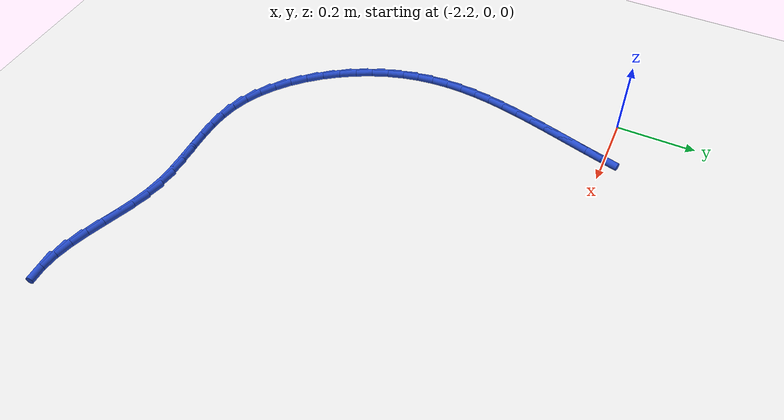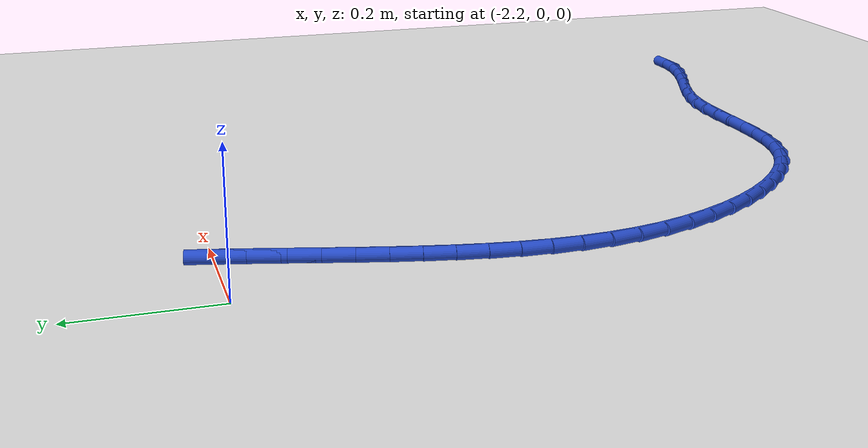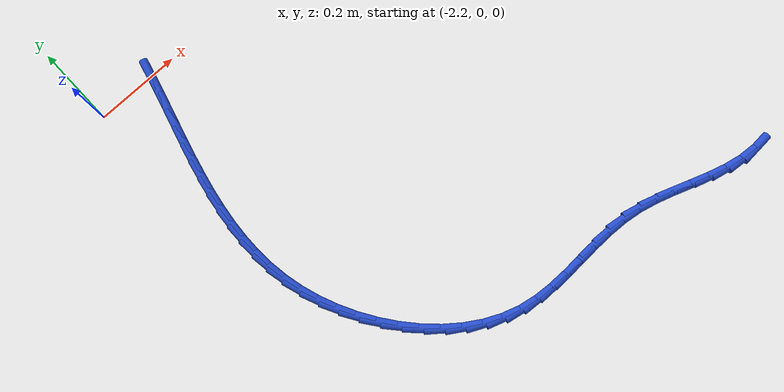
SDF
<sdf version="1.6">
 <world name="default">
  <model name="ground_plane">
   <static>1</static>
   <link name="link">
    <collision name="collision">
     <geometry><plane><normal>0 0 1</normal><size>100 100</size></plane></geometry>
     <surface><friction><ode><mu>100</mu><mu2>50</mu2></ode></friction></surface>
    </collision>
    <visual name="visual">
     <cast_shadows>0</cast_shadows>
     <geometry><plane><normal>0 0 1</normal><size>100 100</size></plane></geometry>
     <material>
      <script><uri>file://media/materials/scripts/gazebo.material</uri><name>Gazebo/WhiteGlow</name></script>
     </material>
    </visual>
   </link>
  </model>
  <model name="line">
   <link name="link_79">
    <pose>-2.061178307691376 -0.0012658670677298976 0.01 0 1.57 1.3079219242878306</pose>
    <collision name="collision">
     <geometry><cylinder><radius>0.01</radius><length>0.08</length></cylinder></geometry>
    </collision>
    <visual name="visual">
     <material>
      <script><name>Gazebo/Blue</name><uri>file://media/materials/scripts/gazebo.material</uri></script>
     </material>
     <geometry><cylinder><radius>0.01</radius><length>0.08</length></cylinder></geometry>
    </visual>
   </link>
   <link name="link_80">
    <pose>-2.0726289810523526 -0.0438173352241285 0.01 0 1.57 1.2950943270776047</pose>
    <collision name="collision">
     <geometry><cylinder><radius>0.01</radius><length>0.08</length></cylinder></geometry>
    </collision>
    <visual name="visual">
     <material>
      <script><name>Gazebo/Blue</name><uri>file://media/materials/scripts/gazebo.material</uri></script>
     </material>
     <geometry><cylinder><radius>0.01</radius><length>0.08</length></cylinder></geometry>
    </visual>
   </link>
   <link name="link_81">
    <pose>-2.084618586965292 -0.08619741327912472 0.01 0 1.57 1.2901176989705136</pose>
    <collision name="collision">
     <geometry><cylinder><radius>0.01</radius><length>0.08</length></cylinder></geometry>
    </collision>
    <visual name="visual">
     <material>
      <script><name>Gazebo/Blue</name><uri>file://media/materials/scripts/gazebo.material</uri></script>
     </material>
     <geometry><cylinder><radius>0.01</radius><length>0.08</length></cylinder></geometry>
    </visual>
   </link>
   <link name="link_82">
    <pose>-2.0967936234695177 -0.12842943596567627 0.01 0 1.57 1.2930169511335645</pose>
    <collision name="collision">
     <geometry><cylinder><radius>0.01</radius><length>0.08</length></cylinder></geometry>
    </collision>
    <visual name="visual">
     <material>
      <script><name>Gazebo/Blue</name><uri>file://media/materials/scripts/gazebo.material</uri></script>
     </material>
     <geometry><cylinder><radius>0.01</radius><length>0.08</length></cylinder></geometry>
    </visual>
   </link>
   <link name="link_83">
    <pose>-2.108800588604355 -0.1705367380167386 0.01 0 1.57 1.3038966490480937</pose>
    <collision name="collision">
     <geometry><cylinder><radius>0.01</radius><length>0.08</length></cylinder></geometry>
    </collision>
    <visual name="visual">
     <material>
      <script><name>Gazebo/Blue</name><uri>file://media/materials/scripts/gazebo.material</uri></script>
     </material>
     <geometry><cylinder><radius>0.01</radius><length>0.08</length></cylinder></geometry>
    </visual>
   </link>
   <link name="link_84">
    <pose>-2.1202859804091263 -0.21254265416526932 0.01 0 1.57 1.3229386004996582</pose>
    <collision name="collision">
     <geometry><cylinder><radius>0.01</radius><length>0.08</length></cylinder></geometry>
    </collision>
    <visual name="visual">
     <material>
      <script><name>Gazebo/Blue</name><uri>file://media/materials/scripts/gazebo.material</uri></script>
     </material>
     <geometry><cylinder><radius>0.01</radius><length>0.08</length></cylinder></geometry>
    </visual>
   </link>
   <link name="link_85">
    <pose>-2.130896296923157 -0.25447051914422536 0.01 0 1.57 1.3503849199282958</pose>
    <collision name="collision">
     <geometry><cylinder><radius>0.01</radius><length>0.08</length></cylinder></geometry>
    </collision>
    <visual name="visual">
     <material>
      <script><name>Gazebo/Blue</name><uri>file://media/materials/scripts/gazebo.material</uri></script>
     </material>
     <geometry><cylinder><radius>0.01</radius><length>0.08</length></cylinder></geometry>
    </visual>
   </link>
   <link name="link_86">
    <pose>-2.140278036185772 -0.2963436676865637 0.01 0 1.57 1.38650303689056</pose>
    <collision name="collision">
     <geometry><cylinder><radius>0.01</radius><length>0.08</length></cylinder></geometry>
    </collision>
    <visual name="visual">
     <material>
      <script><name>Gazebo/Blue</name><uri>file://media/materials/scripts/gazebo.material</uri></script>
     </material>
     <geometry><cylinder><radius>0.01</radius><length>0.08</length></cylinder></geometry>
    </visual>
   </link>
   <link name="link_87">
    <pose>-2.148077696236295 -0.3381854345252421 0.01 0 1.57 1.431527881515273</pose>
    <collision name="collision">
     <geometry><cylinder><radius>0.01</radius><length>0.08</length></cylinder></geometry>
    </collision>
    <visual name="visual">
     <material>
      <script><name>Gazebo/Blue</name><uri>file://media/materials/scripts/gazebo.material</uri></script>
     </material>
     <geometry><cylinder><radius>0.01</radius><length>0.08</length></cylinder></geometry>
    </visual>
   </link>
   <link name="link_88">
    <pose>-2.15394177511405 -0.3800191543932159 0.01 0 1.57 1.4855771659011485</pose>
    <collision name="collision">
     <geometry><cylinder><radius>0.01</radius><length>0.08</length></cylinder></geometry>
    </collision>
    <visual name="visual">
     <material>
      <script><name>Gazebo/Blue</name><uri>file://media/materials/scripts/gazebo.material</uri></script>
     </material>
     <geometry><cylinder><radius>0.01</radius><length>0.08</length></cylinder></geometry>
    </visual>
   </link>
   <link name="link_89">
    <pose>-2.1575167708583614 -0.4218681620234427 0.01 0 1.57 1.5485401931752572</pose>
    <collision name="collision">
     <geometry><cylinder><radius>0.01</radius><length>0.08</length></cylinder></geometry>
    </collision>
    <visual name="visual">
     <material>
      <script><name>Gazebo/Blue</name><uri>file://media/materials/scripts/gazebo.material</uri></script>
     </material>
     <geometry><cylinder><radius>0.01</radius><length>0.08</length></cylinder></geometry>
    </visual>
   </link>
   <link name="link_90">
    <pose>-2.158449181508554 -0.46375579214887974 0.01 0 1.57 -1.5216417533860516</pose>
    <collision name="collision">
     <geometry><cylinder><radius>0.01</radius><length>0.08</length></cylinder></geometry>
    </collision>
    <visual name="visual">
     <material>
      <script><name>Gazebo/Blue</name><uri>file://media/materials/scripts/gazebo.material</uri></script>
     </material>
     <geometry><cylinder><radius>0.01</radius><length>0.08</length></cylinder></geometry>
    </visual>
   </link>
   <link name="link_91">
    <pose>-2.1563855051039513 -0.5057053795024835 0.01 0 1.57 -1.4427209142557833</pose>
    <collision name="collision">
     <geometry><cylinder><radius>0.01</radius><length>0.08</length></cylinder></geometry>
    </collision>
    <visual name="visual">
     <material>
      <script><name>Gazebo/Blue</name><uri>file://media/materials/scripts/gazebo.material</uri></script>
     </material>
     <geometry><cylinder><radius>0.01</radius><length>0.08</length></cylinder></geometry>
    </visual>
   </link>
   <link name="link_92">
    <pose>-2.1509722396838784 -0.547740258817212 0.01 0 1.57 -1.3577617055067246</pose>
    <collision name="collision">
     <geometry><cylinder><radius>0.01</radius><length>0.08</length></cylinder></geometry>
    </collision>
    <visual name="visual">
     <material>
      <script><name>Gazebo/Blue</name><uri>file://media/materials/scripts/gazebo.material</uri></script>
     </material>
     <geometry><cylinder><radius>0.01</radius><length>0.08</length></cylinder></geometry>
    </visual>
   </link>
   <link name="link_93">
    <pose>-2.1418558832876595 -0.5898837648260209 0.01 0 1.57 -1.2702923874854628</pose>
    <collision name="collision">
     <geometry><cylinder><radius>0.01</radius><length>0.08</length></cylinder></geometry>
    </collision>
    <visual name="visual">
     <material>
      <script><name>Gazebo/Blue</name><uri>file://media/materials/scripts/gazebo.material</uri></script>
     </material>
     <geometry><cylinder><radius>0.01</radius><length>0.08</length></cylinder></geometry>
    </visual>
   </link>
   <link name="link_94">
    <pose>-2.1287838370528123 -0.632066828683473 0.01 0 1.57 -1.186944312933135</pose>
    <collision name="collision">
     <geometry><cylinder><radius>0.01</radius><length>0.08</length></cylinder></geometry>
    </collision>
    <visual name="visual">
     <material>
      <script><name>Gazebo/Blue</name><uri>file://media/materials/scripts/gazebo.material</uri></script>
     </material>
     <geometry><cylinder><radius>0.01</radius><length>0.08</length></cylinder></geometry>
    </visual>
   </link>
   <link name="link_95">
    <pose>-2.1119083337929845 -0.6738496506528981 0.01 0 1.57 -1.107142744837634</pose>
    <collision name="collision">
     <geometry><cylinder><radius>0.01</radius><length>0.08</length></cylinder></geometry>
    </collision>
    <visual name="visual">
     <material>
      <script><name>Gazebo/Blue</name><uri>file://media/materials/scripts/gazebo.material</uri></script>
     </material>
     <geometry><cylinder><radius>0.01</radius><length>0.08</length></cylinder></geometry>
    </visual>
   </link>
   <link name="link_96">
    <pose>-2.0914831199819712 -0.714699468287648 0.01 0 1.57 -1.028684309226763</pose>
    <collision name="collision">
     <geometry><cylinder><radius>0.01</radius><length>0.08</length></cylinder></geometry>
    </collision>
    <visual name="visual">
     <material>
      <script><name>Gazebo/Blue</name><uri>file://media/materials/scripts/gazebo.material</uri></script>
     </material>
     <geometry><cylinder><radius>0.01</radius><length>0.08</length></cylinder></geometry>
    </visual>
   </link>
   <link name="link_97">
    <pose>-2.067761942093668 -0.7540835191409777 0.01 0 1.57 -0.9494946443067683</pose>
    <collision name="collision">
     <geometry><cylinder><radius>0.01</radius><length>0.08</length></cylinder></geometry>
    </collision>
    <visual name="visual">
     <material>
      <script><name>Gazebo/Blue</name><uri>file://media/materials/scripts/gazebo.material</uri></script>
     </material>
     <geometry><cylinder><radius>0.01</radius><length>0.08</length></cylinder></geometry>
    </visual>
   </link>
   <link name="link_98">
    <pose>-2.040998546601972 -0.791469040766145 0.01 0 1.57 -0.8675399596296628</pose>
    <collision name="collision">
     <geometry><cylinder><radius>0.01</radius><length>0.08</length></cylinder></geometry>
    </collision>
    <visual name="visual">
     <material>
      <script><name>Gazebo/Blue</name><uri>file://media/materials/scripts/gazebo.material</uri></script>
     </material>
     <geometry><cylinder><radius>0.01</radius><length>0.08</length></cylinder></geometry>
    </visual>
   </link>
   <link name="link_99">
    <pose>-2.0114466799807795 -0.8263232707164064 0.01 0 1.57 -0.7807577701212459</pose>
    <collision name="collision">
     <geometry><cylinder><radius>0.01</radius><length>0.08</length></cylinder></geometry>
    </collision>
    <visual name="visual">
     <material>
      <script><name>Gazebo/Blue</name><uri>file://media/materials/scripts/gazebo.material</uri></script>
     </material>
     <geometry><cylinder><radius>0.01</radius><length>0.08</length></cylinder></geometry>
    </visual>
   </link>
   <link name="link_100">
    <pose>-1.9793600887039866 -0.8581134465450189 0.01 0 1.57 -0.6870255660911043</pose>
    <collision name="collision">
     <geometry><cylinder><radius>0.01</radius><length>0.08</length></cylinder></geometry>
    </collision>
    <visual name="visual">
     <material>
      <script><name>Gazebo/Blue</name><uri>file://media/materials/scripts/gazebo.material</uri></script>
     </material>
     <geometry><cylinder><radius>0.01</radius><length>0.08</length></cylinder></geometry>
    </visual>
   </link>
   <link name="link_101">
    <pose>-1.9449925192454893 -0.886306805805239 0.01 0 1.57 -0.5841995951940643</pose>
    <collision name="collision">
     <geometry><cylinder><radius>0.01</radius><length>0.08</length></cylinder></geometry>
    </collision>
    <visual name="visual">
     <material>
      <script><name>Gazebo/Blue</name><uri>file://media/materials/scripts/gazebo.material</uri></script>
     </material>
     <geometry><cylinder><radius>0.01</radius><length>0.08</length></cylinder></geometry>
    </visual>
   </link>
   <link name="link_102">
    <pose>-1.9085977180791864 -0.9103705860503233 0.01 0 1.57 -0.47027592582265887</pose>
    <collision name="collision">
     <geometry><cylinder><radius>0.01</radius><length>0.08</length></cylinder></geometry>
    </collision>
    <visual name="visual">
     <material>
      <script><name>Gazebo/Blue</name><uri>file://media/materials/scripts/gazebo.material</uri></script>
     </material>
     <geometry><cylinder><radius>0.01</radius><length>0.08</length></cylinder></geometry>
    </visual>
   </link>
   <link name="link_103">
    <pose>-1.8704294316789731 -0.9297720248335286 0.01 0 1.57 -0.34373973444647177</pose>
    <collision name="collision">
     <geometry><cylinder><radius>0.01</radius><length>0.08</length></cylinder></geometry>
    </collision>
    <visual name="visual">
     <material>
      <script><name>Gazebo/Blue</name><uri>file://media/materials/scripts/gazebo.material</uri></script>
     </material>
     <geometry><cylinder><radius>0.01</radius><length>0.08</length></cylinder></geometry>
    </visual>
   </link>
   <link name="link_104">
    <pose>-1.8307414065187453 -0.9439783597081117 0.01 0 1.57 -0.20956809041789357</pose>
    <collision name="collision">
     <geometry><cylinder><radius>0.01</radius><length>0.08</length></cylinder></geometry>
    </collision>
    <visual name="visual">
     <material>
      <script><name>Gazebo/Blue</name><uri>file://media/materials/scripts/gazebo.material</uri></script>
     </material>
     <geometry><cylinder><radius>0.01</radius><length>0.08</length></cylinder></geometry>
    </visual>
   </link>
   <link name="link_105">
    <pose>-1.7897881576267793 -0.9526887453176129 0.01 0 1.57 -0.09969883323726439</pose>
    <collision name="collision">
     <geometry><cylinder><radius>0.01</radius><length>0.08</length></cylinder></geometry>
    </collision>
    <visual name="visual">
     <material>
      <script><name>Gazebo/Blue</name><uri>file://media/materials/scripts/gazebo.material</uri></script>
     </material>
     <geometry><cylinder><radius>0.01</radius><length>0.08</length></cylinder></geometry>
    </visual>
   </link>
   <link name="link_106">
    <pose>-1.74782845397098 -0.9568859947259677 0.01 0 1.57 -0.025952413896197856</pose>
    <collision name="collision">
     <geometry><cylinder><radius>0.01</radius><length>0.08</length></cylinder></geometry>
    </collision>
    <visual name="visual">
     <material>
      <script><name>Gazebo/Blue</name><uri>file://media/materials/scripts/gazebo.material</uri></script>
     </material>
     <geometry><cylinder><radius>0.01</radius><length>0.08</length></cylinder></geometry>
    </visual>
   </link>
   <link name="link_107">
    <pose>-1.705122528093175 -0.9579945654857485 0.01 0 1.57 0.012854579201114906</pose>
    <collision name="collision">
     <geometry><cylinder><radius>0.01</radius><length>0.08</length></cylinder></geometry>
    </collision>
    <visual name="visual">
     <material>
      <script><name>Gazebo/Blue</name><uri>file://media/materials/scripts/gazebo.material</uri></script>
     </material>
     <geometry><cylinder><radius>0.01</radius><length>0.08</length></cylinder></geometry>
    </visual>
   </link>
   <link name="link_108">
    <pose>-1.6619306138802166 -0.95743932102041 0.01 0 1.57 0.018289966517682395</pose>
    <collision name="collision">
     <geometry><cylinder><radius>0.01</radius><length>0.08</length></cylinder></geometry>
    </collision>
    <visual name="visual">
     <material>
      <script><name>Gazebo/Blue</name><uri>file://media/materials/scripts/gazebo.material</uri></script>
     </material>
     <geometry><cylinder><radius>0.01</radius><length>0.08</length></cylinder></geometry>
    </visual>
   </link>
   <link name="link_109">
    <pose>-1.6185129452189548 -0.956645124753405 0.01 0 1.57 -0.009028951473472997</pose>
    <collision name="collision">
     <geometry><cylinder><radius>0.01</radius><length>0.08</length></cylinder></geometry>
    </collision>
    <visual name="visual">
     <material>
      <script><name>Gazebo/Blue</name><uri>file://media/materials/scripts/gazebo.material</uri></script>
     </material>
     <geometry><cylinder><radius>0.01</radius><length>0.08</length></cylinder></geometry>
    </visual>
   </link>
   <link name="link_110">
    <pose>-1.5751297559962423 -0.9570368401081877 0.01 0 1.57 -0.06956952728130682</pose>
    <collision name="collision">
     <geometry><cylinder><radius>0.01</radius><length>0.08</length></cylinder></geometry>
    </collision>
    <visual name="visual">
     <material>
      <script><name>Gazebo/Blue</name><uri>file://media/materials/scripts/gazebo.material</uri></script>
     </material>
     <geometry><cylinder><radius>0.01</radius><length>0.08</length></cylinder></geometry>
    </visual>
   </link>
   <link name="link_111">
    <pose>-1.532041280098929 -0.9600393305082118 0.01 0 1.57 -0.1637836511515226</pose>
    <collision name="collision">
     <geometry><cylinder><radius>0.01</radius><length>0.08</length></cylinder></geometry>
    </collision>
    <visual name="visual">
     <material>
      <script><name>Gazebo/Blue</name><uri>file://media/materials/scripts/gazebo.material</uri></script>
     </material>
     <geometry><cylinder><radius>0.01</radius><length>0.08</length></cylinder></geometry>
    </visual>
   </link>
   <link name="link_112">
    <pose>-1.48950663722782 -0.9670687774817752 0.01 0 1.57 -0.26778719580997806</pose>
    <collision name="collision">
     <geometry><cylinder><radius>0.01</radius><length>0.08</length></cylinder></geometry>
    </collision>
    <visual name="visual">
     <material>
      <script><name>Gazebo/Blue</name><uri>file://media/materials/scripts/gazebo.material</uri></script>
     </material>
     <geometry><cylinder><radius>0.01</radius><length>0.08</length></cylinder></geometry>
    </visual>
   </link>
   <link name="link_113">
    <pose>-1.4476578661709834 -0.978551130124038 0.01 0 1.57 -0.3371897281789532</pose>
    <collision name="collision">
     <geometry><cylinder><radius>0.01</radius><length>0.08</length></cylinder></geometry>
    </collision>
    <visual name="visual">
     <material>
      <script><name>Gazebo/Blue</name><uri>file://media/materials/scripts/gazebo.material</uri></script>
     </material>
     <geometry><cylinder><radius>0.01</radius><length>0.08</length></cylinder></geometry>
    </visual>
   </link>
   <link name="link_114">
    <pose>-1.4063842506072555 -0.99302075540904 0.01 0 1.57 -0.3687073557311885</pose>
    <collision name="collision">
     <geometry><cylinder><radius>0.01</radius><length>0.08</length></cylinder></geometry>
    </collision>
    <visual name="visual">
     <material>
      <script><name>Gazebo/Blue</name><uri>file://media/materials/scripts/gazebo.material</uri></script>
     </material>
     <geometry><cylinder><radius>0.01</radius><length>0.08</length></cylinder></geometry>
    </visual>
   </link>
   <link name="link_115">
    <pose>-1.3655477409080337 -1.0087990353160556 0.01 0 1.57 -0.3632350453445292</pose>
    <collision name="collision">
     <geometry><cylinder><radius>0.01</radius><length>0.08</length></cylinder></geometry>
    </collision>
    <visual name="visual">
     <material>
      <script><name>Gazebo/Blue</name><uri>file://media/materials/scripts/gazebo.material</uri></script>
     </material>
     <geometry><cylinder><radius>0.01</radius><length>0.08</length></cylinder></geometry>
    </visual>
   </link>
   <link name="link_116">
    <pose>-1.3250102874447127 -1.024207351824359 0.01 0 1.57 -0.31954040383989823</pose>
    <collision name="collision">
     <geometry><cylinder><radius>0.01</radius><length>0.08</length></cylinder></geometry>
    </collision>
    <visual name="visual">
     <material>
      <script><name>Gazebo/Blue</name><uri>file://media/materials/scripts/gazebo.material</uri></script>
     </material>
     <geometry><cylinder><radius>0.01</radius><length>0.08</length></cylinder></geometry>
    </visual>
   </link>
   <link name="link_117">
    <pose>-1.2846338405886906 -1.037567086913225 0.01 0 1.57 -0.23431911573037223</pose>
    <collision name="collision">
     <geometry><cylinder><radius>0.01</radius><length>0.08</length></cylinder></geometry>
    </collision>
    <visual name="visual">
     <material>
      <script><name>Gazebo/Blue</name><uri>file://media/materials/scripts/gazebo.material</uri></script>
     </material>
     <geometry><cylinder><radius>0.01</radius><length>0.08</length></cylinder></geometry>
    </visual>
   </link>
   <link name="link_118">
    <pose>-1.244280350711362 -1.0471996225619271 0.01 0 1.57 -0.1050798761458902</pose>
    <collision name="collision">
     <geometry><cylinder><radius>0.01</radius><length>0.08</length></cylinder></geometry>
    </collision>
    <visual name="visual">
     <material>
      <script><name>Gazebo/Blue</name><uri>file://media/materials/scripts/gazebo.material</uri></script>
     </material>
     <geometry><cylinder><radius>0.01</radius><length>0.08</length></cylinder></geometry>
    </visual>
   </link>
   <link name="link_119">
    <pose>-1.2038137627318508 -1.0514675667578868 0.01 0 1.57 0.038064229702545666</pose>
    <collision name="collision">
     <geometry><cylinder><radius>0.01</radius><length>0.08</length></cylinder></geometry>
    </collision>
    <visual name="visual">
     <material>
      <script><name>Gazebo/Blue</name><uri>file://media/materials/scripts/gazebo.material</uri></script>
     </material>
     <geometry><cylinder><radius>0.01</radius><length>0.08</length></cylinder></geometry>
    </visual>
   </link>
  </model>
 </world>
</sdf>
